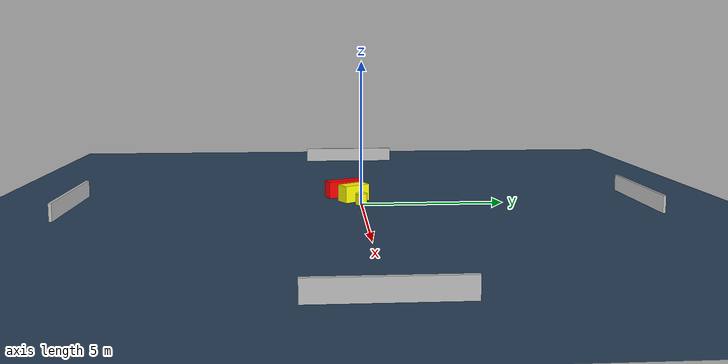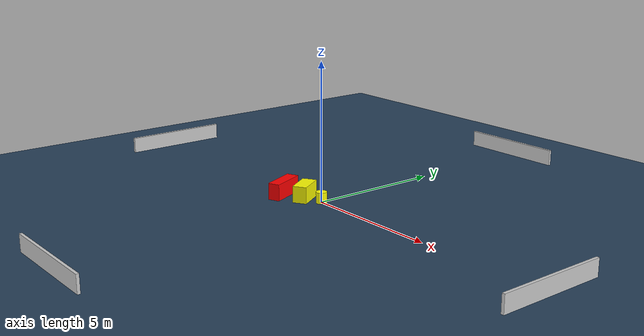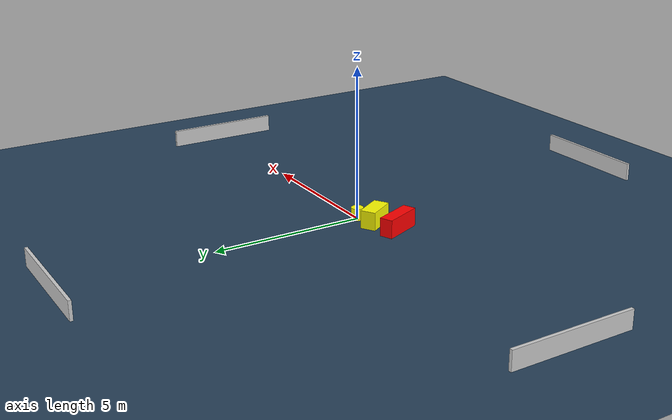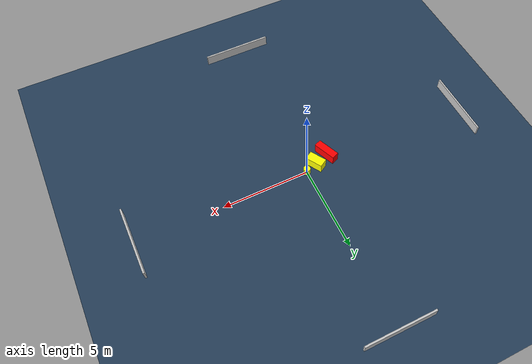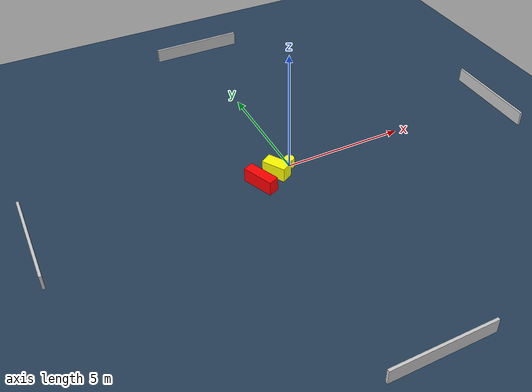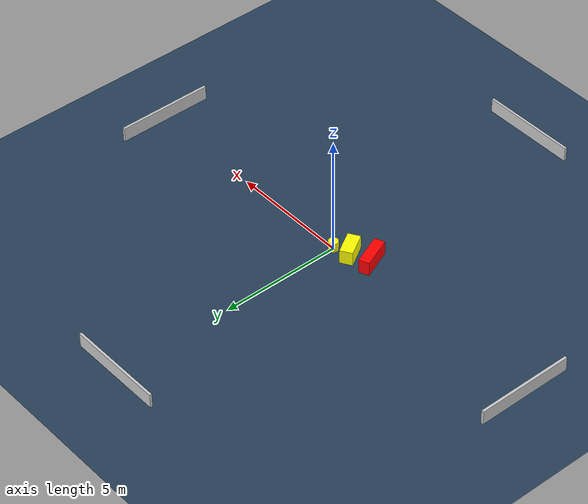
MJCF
<?xml version="1.0" ?>
<mujoco model="generated_environment">
  <option timestep="0.01" integrator="RK4" cone="elliptic"/>
  <default>
    <geom density="1"/>
  </default>
  <asset>
    <texture builtin="gradient" height="3072" name="skybox" rgb1="0.3 0.5 0.7" rgb2="0 0 0" type="skybox" width="512"/>
    <texture builtin="checker" height="300" name="groundplane" rgb1="0.2 0.3 0.4" rgb2="0.1 0.2 0.3" type="2d" width="300"/>
    <material name="groundplane" reflectance="0.2" texrepeat="5 5" texture="groundplane"/>
  </asset>
  <worldbody>
    <light dir="0 0 -1" directional="true" pos="0 0 1.5"/>
    <geom condim="3" friction="0.5 0.005 0.001" material="groundplane" name="floor" pos="0 0 0" size="0 0 0.05" type="plane"/>
    <body name="walls">
      <geom name="wall_1" condim="4" pos="-10.0 0.0 0.3" rgba="0.800000011920929 0.800000011920929 0.800000011920929 1.0" size="0.05 2.0 0.3" type="box"/>
      <geom name="wall_2" condim="4" pos="10.0 0.0 0.3" rgba="0.800000011920929 0.800000011920929 0.800000011920929 1.0" size="0.05 2.0 0.3" type="box"/>
      <geom name="wall_3" condim="4" pos="0.0 -10.0 0.3" rgba="0.800000011920929 0.800000011920929 0.800000011920929 1.0" size="2.0 0.05 0.3" type="box"/>
      <geom name="wall_4" condim="4" pos="0.0 10.0 0.3" rgba="0.800000011920929 0.800000011920929 0.800000011920929 1.0" size="2.0 0.05 0.3" type="box"/>
    </body>
    <body name="robot">
      <joint name="joint_x" type="slide" pos="0 0 0" axis="1 0 0"/>
      <joint name="joint_y" type="slide" pos="0 0 0" axis="0 1 0"/>
      <geom name="robot" type="cylinder" pos="0.0 0.0 0.2" size="0.2 0.2 0.0" mass="5.0" friction="1.0 0.005 0.0001" condim="4" rgba="1.0 1.0 0.0 1.0"/>
    </body>
    <body name="obstacle_1_movable">
      <geom name="obstacle_1_movable" condim="4" pos="-0.6699580422663644 -0.22831343178185723 0.3" euler="0 0 31.080990356197944" friction="0.0 0.005 0.001" rgba="1.0 1.0 0.0 1.0" size="0.2551322069831158 0.49815801225761364 0.3" type="box" mass="0.1"/>
      <joint type="free"/>
    </body>
    <body name="obstacle_2_static">
      <geom name="obstacle_2_static" condim="4" pos="-1.4946573874626938 -0.5545167907119336 0.3" euler="0 0 292.5541820206523" friction="0.0 0.005 0.001" rgba="1.0 0.0 0.0 1.0" size="0.6616809462442683 0.21528743559086103 0.3" type="box"/>
    </body>
  </worldbody>
  <actuator>
    <motor name="actuator_x" joint="joint_x" gear="1" ctrlrange="-1 1"/>
    <motor name="actuator_y" joint="joint_y" gear="1" ctrlrange="-1 1"/>
  </actuator>
</mujoco>
